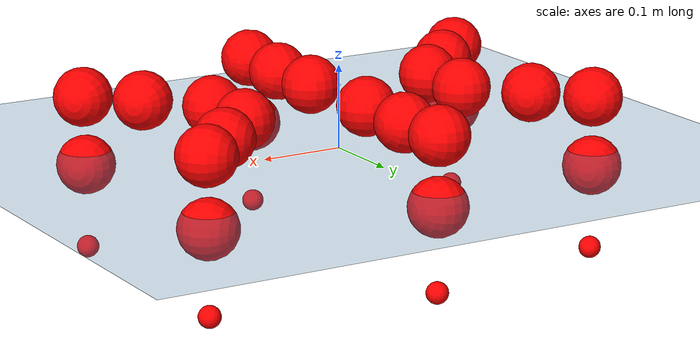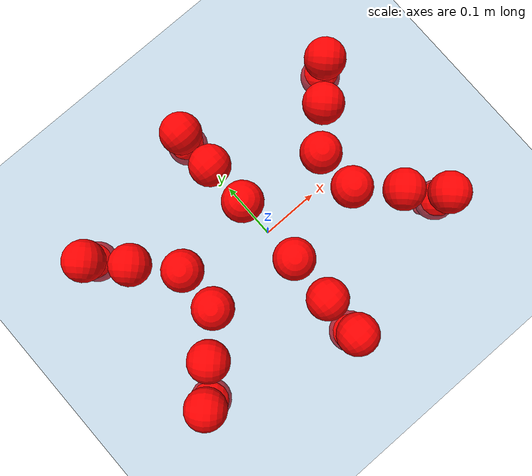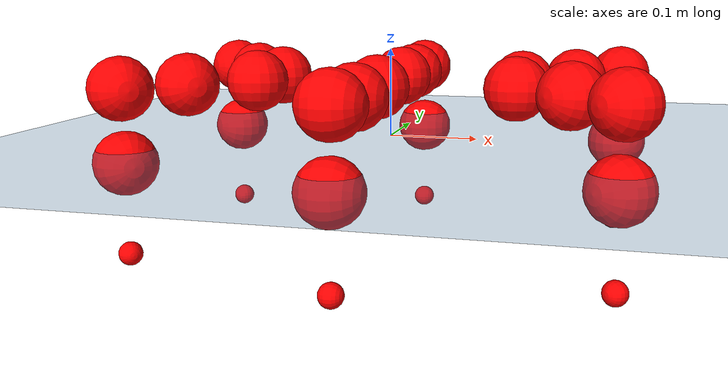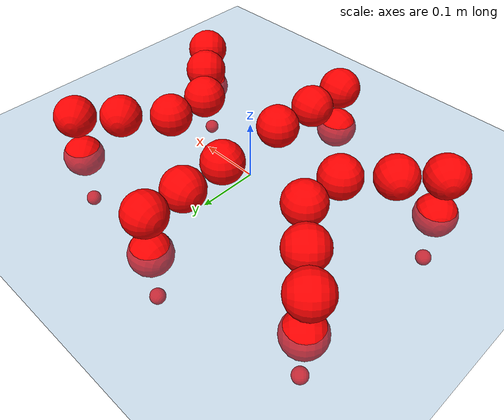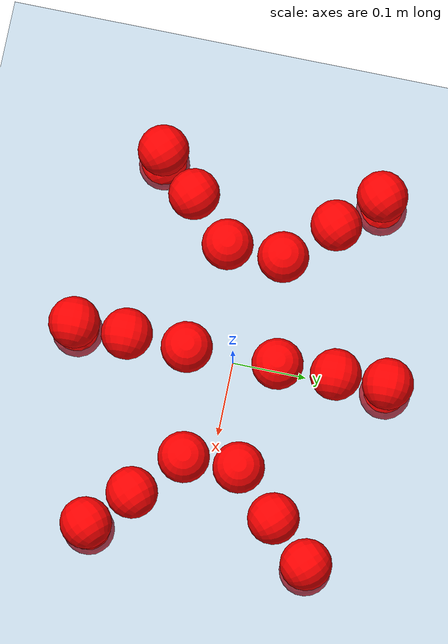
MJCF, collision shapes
<mujoco model="Golem">
  <compiler angle="radian" assetdir="assets" balanceinertia="true" inertiafromgeom="false"/>

  <option timestep="0.005" density="1.2" viscosity="2e-05"/>

  <size nkey="1"/>

  <visual>
    <quality shadowsize="8192"/>
    <map shadowclip="0.5"/>
  </visual>

  <default>
    <default class="/">
      <joint armature="0.01" damping="0.01" frictionloss="0.01"/>
      <geom contype="0" conaffinity="0" group="1" solref="-1000 -80"/>
      <site size="0.01 0.005 0.005" group="5"/>
      <general forcelimited="true" biastype="affine" gainprm="25" biasprm="0 -25 -0.5"/>
      <default class="visual">
        <geom type="mesh" group="2"/>
      </default>
      <default class="collision">
        <geom group="3"/>
      </default>
      <default class="foot">
        <geom size="0.01 0 0" condim="6" group="4" priority="1" solimp="0.015 1 0.01"/>
      </default>
      <default class="reward_collision_sphere">
        <geom group="5" rgba="1 0 0 1"/>
      </default>
    </default>
  </default>

  <asset>
    <texture type="skybox" colorspace="auto" name="//unnamed_texture_0" builtin="gradient" rgb1="0.95 0.95 0.95" rgb2="0.95 0.95 0.95" width="100" height="600"/>
    <texture type="2d" colorspace="auto" name="texplane" builtin="checker" rgb1="0.345 0.575 0.748" rgb2="0.345 0.575 0.748" markrgb="1 1 1" width="512" height="512"/>
    <material name="MatPlane" class="/" texture="texplane" texuniform="true" texrepeat="2 2" specular="0.9"/>
    <mesh name="body" class="/" file="body.stl" scale="0.001 0.001 0.001"/>
    <mesh name="coxa" class="/" file="coxa.stl" scale="0.001 0.001 0.001"/>
    <mesh name="femur" class="/" file="femur.stl" scale="0.001 0.001 0.001"/>
    <mesh name="tibia" class="/" file="tibia.stl" scale="0.001 0.001 0.001"/>
    <mesh name="tarsus" class="/" file="tarsus.stl" scale="0.001 0.001 0.001"/>
  </asset>

  <worldbody>
    <geom name="floor" class="/" size="100 100 0.125" type="plane" group="0" material="MatPlane"/>
    <light name="toplight_shadow" class="/" pos="0 0 5" dir="0.0990148 0.0990148 -0.990148" type="directional" ambient="0.04 0.04 0.04" diffuse="0.55 0.55 0.55" specular="0.12 0.12 0.12"/>
    <light name="toplight_fill" class="/" pos="0 0 5" dir="0.0990148 0.0990148 -0.990148" type="directional" castshadow="false" ambient="0.04 0.04 0.04" diffuse="0.3 0.3 0.3" specular="0.08 0.08 0.08"/>
    <body name="trunk" pos="0.00017472 -3.25771e-05 -0.00137493" quat="1 -0.000228 -2.13752e-05 0.000398488">
      <inertial pos="1.44431e-05 3.551e-05 -0.00452211" quat="0.999988 0.00349474 0.00346104 -0.000492799" mass="2.49902" diaginertia="0.00712097 0.00146464 0.0103372"/>
      <joint name="//unnamed_joint_0" type="free"/>
      <geom name="//unnamed_geom_1" class="/" pos="0 0 0.0643524" quat="1 0 0 0" type="mesh" rgba="0.9 0.9 0.9 1" mesh="body"/>
      <site name="imu" class="/" pos="0.125977 -0.000433129 0.104588" size="0.00871949"/>
      <camera name="track" class="/" pos="0 -1.35639 0" quat="0.707107 0.707107 0 0" mode="trackcom"/>
      <camera name="ego_camera" class="/" pos="0.121179 0 0.100551" quat="-0.5 -0.5 0.5 0.5"/>
      <body name="coxa_RR" pos="-0.16687 -0.0573695 0.0652723" quat="0.383454 -0.000352791 -0.000417465 -0.92356">
        <inertial pos="-0.00177469 0.000453884 0.00111846" quat="0.99999 0.00220306 -0.000986935 -0.0036912" mass="0.131364" diaginertia="0.00706879 0.00144876 0.010078"/>
        <joint name="coxa_joint_RR" class="/" pos="0 0 0" axis="2.79469e-06 9.37781e-05 -1" range="-3.12031 3.14177" armature="0.00901868" damping="0.00911671" frictionloss="0.0091122"/>
        <geom name="//unnamed_geom_2" class="/" type="mesh" rgba="0.2 0.2 0.2 1" mesh="coxa"/>
        <geom name="//unnamed_geom_3" class="reward_collision_sphere" size="0.0348779" pos="-0.0279644 0 0"/>
        <body name="femur_RR" pos="0.0543385 -0.000596259 -5.61509e-06" quat="0.499907 -0.499927 0.500069 0.500097">
          <inertial pos="-0.000518966 0.000782599 0.00126784" quat="1 1.40438e-06 -0.000183725 3.45235e-05" mass="0.132754" diaginertia="0.00706254 0.00143755 0.0100848"/>
          <joint name="femur_joint_RR" class="/" pos="0 0 0" axis="0.00231418 0.0021499 -0.999995" stiffness="0.000683751" range="-3.15335 3.13955" armature="0.00909476" damping="0.0048008" frictionloss="0.00906683"/>
          <geom name="//unnamed_geom_4" class="/" type="mesh" rgba="0.9 0.9 0.9 1" mesh="femur"/>
          <geom name="//unnamed_geom_5" class="reward_collision_sphere" size="0.0348779"/>
          <body name="tibia_RR" pos="0.000162886 -0.0730929 0.00119996" quat="-5.63362e-06 1 6.65998e-06 2.76519e-06">
            <inertial pos="0.000917691 0.00122828 -0.0013608" quat="0.999988 -0.00419702 -0.00123857 0.00212585" mass="0.133269" diaginertia="0.00704535 0.00144489 0.0103974"/>
            <joint name="tibia_joint_RR" class="/" pos="0 0 0" axis="-0.000359745 0.000171455 1" range="-3.13844 3.13804" armature="0.00882453" damping="0" frictionloss="0.00893449"/>
            <geom name="//unnamed_geom_6" class="/" type="mesh" rgba="0.2 0.2 0.2 1" mesh="tibia"/>
            <geom name="//unnamed_geom_7" class="reward_collision_sphere" size="0.0348779"/>
            <body name="tarsus_RR" pos="0.0798495 -0.00144346 -0.0009892" quat="1 0.000115557 0.000621679 6.05294e-05">
              <inertial pos="0.0542827 -0.00120485 -0.000895199" quat="0.499802 0.500078 0.499977 0.500142" mass="0.12939" diaginertia="0.0070565 0.00143433 0.0101721"/>
              <joint name="tarsus_joint_RR" class="/" pos="0 0 0" axis="0.000432149 0.000637122 1" range="-3.14199 3.12819" armature="0.00877072" damping="0.000327026" frictionloss="0.00859142"/>
              <geom name="//unnamed_geom_8" class="/" type="mesh" rgba="0.9 0.9 0.9 1" mesh="tarsus"/>
              <geom name="foot_1" class="foot" size="0.00850124" pos="0.1044 0 0" quat="0 -0.707107 0 0.707107"/>
              <geom name="//unnamed_geom_10" class="reward_collision_sphere" size="0.0348779"/>
              <geom name="//unnamed_geom_11" class="reward_collision_sphere" size="0.0130792" pos="0.100206 0 0"/>
              <site name="foot_1" class="foot" pos="0.1044 0 0" quat="0 -0.707107 0 0.707107" size="0.00871949"/>
            </body>
          </body>
        </body>
      </body>
      <body name="coxa_RM" pos="0.000810863 -0.0909128 0.064932" quat="0.706904 -0.000338216 7.80895e-05 -0.70731">
        <inertial pos="0.000145798 0.000535249 -0.00160537" quat="0.999994 0.00247537 0.000433518 -0.0025066" mass="0.132426" diaginertia="0.0069974 0.00141337 0.0101288"/>
        <joint name="coxa_joint_RM" class="/" pos="0 0 0" axis="0.00100725 -0.000614362 -0.999999" range="-3.14206 3.13142" armature="0.00904926" damping="0.0116062" frictionloss="0.00854115"/>
        <geom name="//unnamed_geom_12" class="/" type="mesh" rgba="0.2 0.2 0.2 1" mesh="coxa"/>
        <geom name="//unnamed_geom_13" class="reward_collision_sphere" size="0.0348779" pos="-0.0279644 0 0"/>
        <body name="femur_RM" pos="0.0542069 -0.00188795 -0.00129061" quat="0.499368 -0.499729 0.500502 0.500401">
          <inertial pos="0.00013095 0.000142167 -0.000231717" quat="0.999971 0.00141051 -0.00329044 -0.00675634" mass="0.13167" diaginertia="0.00714322 0.00145419 0.0102882"/>
          <joint name="femur_joint_RM" class="/" pos="0 0 0" axis="0.00291666 0.00352449 -0.99999" range="-3.1541 3.1541" armature="0.00945651" damping="0.0162819" frictionloss="0.00871972"/>
          <geom name="//unnamed_geom_14" class="/" type="mesh" rgba="0.9 0.9 0.9 1" mesh="femur"/>
          <geom name="//unnamed_geom_15" class="reward_collision_sphere" size="0.0348779"/>
          <body name="tibia_RM" pos="-0.00176642 -0.0719104 -0.000724026" quat="3.35875e-05 1 1.65451e-05 4.08421e-06">
            <inertial pos="0.000948292 0.00010416 -0.00106259" quat="0.999996 -0.00278744 7.7567e-05 0.00106241" mass="0.129373" diaginertia="0.00688782 0.00142258 0.0103345"/>
            <joint name="tibia_joint_RM" class="/" pos="0 0 0" axis="0.00115737 -0.000634645 0.999999" range="-3.15167 3.12364" armature="0.00844741" damping="0.000873239" frictionloss="0.00911157"/>
            <geom name="//unnamed_geom_16" class="/" type="mesh" rgba="0.2 0.2 0.2 1" mesh="tibia"/>
            <geom name="//unnamed_geom_17" class="reward_collision_sphere" size="0.0348779"/>
            <body name="tarsus_RM" pos="0.0822744 -0.000723179 0.00236185" quat="1 -0.000191307 -0.000229125 0.000350785">
              <inertial pos="0.0569747 5.15304e-05 0.00127241" quat="0.500589 0.500177 0.499542 0.499691" mass="0.13248" diaginertia="0.00704285 0.0014357 0.010298"/>
              <joint name="tarsus_joint_RM" class="/" pos="0 0 0" axis="0.00086667 0.000102544 1" range="-3.13102 3.17942" armature="0.00870184" damping="0" frictionloss="0.00868253"/>
              <geom name="//unnamed_geom_18" class="/" type="mesh" rgba="0.9 0.9 0.9 1" mesh="tarsus"/>
              <geom name="foot_2" class="foot" size="0.00839063" pos="0.1044 0 0" quat="0 -0.707107 0 0.707107"/>
              <geom name="//unnamed_geom_20" class="reward_collision_sphere" size="0.0348779"/>
              <geom name="//unnamed_geom_21" class="reward_collision_sphere" size="0.0130792" pos="0.100206 0 0"/>
              <site name="foot_2" class="foot" pos="0.1044 0 0" quat="0 -0.707107 0 0.707107" size="0.00871949"/>
            </body>
          </body>
        </body>
      </body>
      <body name="coxa_RF" pos="0.166438 -0.0567756 0.0639074" quat="0.923654 0.000221603 -0.000342805 -0.383226">
        <inertial pos="0.00139955 -0.00103936 0.000200948" quat="0.999999 0.00115041 -8.75743e-05 0.000348825" mass="0.13231" diaginertia="0.0071356 0.00142974 0.0103352"/>
        <joint name="coxa_joint_RF" class="/" pos="0 0 0" axis="0.000486363 0.00117177 -0.999999" range="-3.13884 3.13312" armature="0.00875714" damping="0" frictionloss="0.0091486"/>
        <geom name="//unnamed_geom_22" class="/" type="mesh" rgba="0.2 0.2 0.2 1" mesh="coxa"/>
        <geom name="//unnamed_geom_23" class="reward_collision_sphere" size="0.0348779" pos="-0.0279644 0 0"/>
        <body name="femur_RF" pos="0.0554905 0.00192925 0.00120237" quat="0.499985 -0.500193 0.500673 0.499149">
          <inertial pos="0.000627159 -0.000700817 0.00109032" quat="0.999995 0.00169786 -0.00160652 0.00218231" mass="0.134032" diaginertia="0.00712756 0.00146076 0.010358"/>
          <joint name="femur_joint_RF" class="/" pos="0 0 0" axis="0.00361471 0.000551445 -0.999993" range="-3.15683 3.12407" armature="0.00851892" damping="0.0108443" frictionloss="0.0087843"/>
          <geom name="//unnamed_geom_24" class="/" type="mesh" rgba="0.9 0.9 0.9 1" mesh="femur"/>
          <geom name="//unnamed_geom_25" class="reward_collision_sphere" size="0.0348779"/>
          <body name="tibia_RF" pos="0.000187533 -0.0729022 0.000520387" quat="-5.55926e-05 1 -4.13365e-06 2.80883e-05">
            <inertial pos="-0.000617201 -0.000338482 -4.82138e-05" quat="0.999988 0.00472104 -0.00145072 0.000124919" mass="0.127804" diaginertia="0.00684873 0.001401 0.0101946"/>
            <joint name="tibia_joint_RF" class="/" pos="0 0 0" axis="9.68904e-06 -0.000656719 1" range="-3.13251 3.12335" armature="0.00868789" damping="0" frictionloss="0.00871771"/>
            <geom name="//unnamed_geom_26" class="/" type="mesh" rgba="0.2 0.2 0.2 1" mesh="tibia"/>
            <geom name="//unnamed_geom_27" class="reward_collision_sphere" size="0.0348779"/>
            <body name="tarsus_RF" pos="0.0815716 -0.00165023 0.000570904" quat="1 8.37881e-05 -2.45052e-06 9.59341e-06">
              <inertial pos="0.0557163 0.000331281 -0.000365153" quat="0.500251 0.500027 0.499761 0.499961" mass="0.132871" diaginertia="0.0069716 0.00146034 0.0103003"/>
              <joint name="tarsus_joint_RF" class="/" pos="0 0 0" axis="-0.000680634 0.000407582 1" range="-3.13326 3.14139" armature="0.0086986" damping="0" frictionloss="0.00852659"/>
              <geom name="//unnamed_geom_28" class="/" type="mesh" rgba="0.9 0.9 0.9 1" mesh="tarsus"/>
              <geom name="foot_3" class="foot" size="0.0087789" pos="0.1044 0 0" quat="0 -0.707107 0 0.707107"/>
              <geom name="//unnamed_geom_30" class="reward_collision_sphere" size="0.0348779"/>
              <geom name="//unnamed_geom_31" class="reward_collision_sphere" size="0.0130792" pos="0.100206 0 0"/>
              <site name="foot_3" class="foot" pos="0.1044 0 0" quat="0 -0.707107 0 0.707107" size="0.00871949"/>
            </body>
          </body>
        </body>
      </body>
      <body name="coxa_LR" pos="-0.164938 0.0588496 0.0642949" quat="0.382631 -0.000257262 3.52873e-05 0.923901">
        <inertial pos="-0.00010854 0.000771729 0.000142027" quat="1 1.70299e-05 4.72852e-06 4.57225e-05" mass="0.131265" diaginertia="0.00688862 0.00141145 0.00999228"/>
        <joint name="coxa_joint_LR" class="/" pos="0 0 0" axis="0.000274291 -0.00228378 -0.999997" range="-3.13799 3.13176" armature="0.00834776" damping="0.0102522" frictionloss="0.00886403"/>
        <geom name="//unnamed_geom_32" class="/" type="mesh" rgba="0.2 0.2 0.2 1" mesh="coxa"/>
        <geom name="//unnamed_geom_33" class="reward_collision_sphere" size="0.0348779" pos="-0.0279644 0 0"/>
        <body name="femur_LR" pos="0.0556988 -0.00319841 5.5583e-06" quat="0.500004 -0.500001 0.500012 0.499983">
          <inertial pos="-0.000621072 0.000787477 -0.00189727" quat="0.999992 0.000482148 -0.00309107 -0.00267795" mass="0.129323" diaginertia="0.00693059 0.00141212 0.0101661"/>
          <joint name="femur_joint_LR" class="/" pos="0 0 0" axis="0.0057083 0.00680912 0.999961" range="-3.13541 3.14041" armature="0.00852671" damping="0.00492677" frictionloss="0.00851225"/>
          <geom name="//unnamed_geom_34" class="/" type="mesh" rgba="0.9 0.9 0.9 1" mesh="femur"/>
          <geom name="//unnamed_geom_35" class="reward_collision_sphere" size="0.0348779"/>
          <body name="tibia_LR" pos="0.000278006 -0.0736535 -0.00122307" quat="-0.000187236 1 5.57667e-05 -1.43594e-05">
            <inertial pos="-0.000798395 0.00117244 -0.00025232" quat="0.999999 -0.000435098 4.42794e-05 0.00108949" mass="0.131521" diaginertia="0.00686986 0.00142784 0.0103019"/>
            <joint name="tibia_joint_LR" class="/" pos="0 0 0" axis="-0.00690685 0.00558294 -0.999961" range="-3.12815 3.0978" armature="0.00959632" damping="0" frictionloss="0.00864643"/>
            <geom name="//unnamed_geom_36" class="/" type="mesh" rgba="0.2 0.2 0.2 1" mesh="tibia"/>
            <geom name="//unnamed_geom_37" class="reward_collision_sphere" size="0.0348779"/>
            <body name="tarsus_LR" pos="0.0820827 0.000921895 0.00218528" quat="1 1.6784e-05 8.57523e-05 0.000239553">
              <inertial pos="0.0580317 -9.4501e-05 -0.00194774" quat="0.500288 0.499968 0.499723 0.50002" mass="0.133623" diaginertia="0.00704536 0.00143802 0.0103522"/>
              <joint name="tarsus_joint_LR" class="/" pos="0 0 0" axis="0.000796577 -0.00120487 -0.999999" stiffness="0.000209887" range="-3.14957 3.15336" armature="0.00866592" damping="0.00278783" frictionloss="0.00874998"/>
              <geom name="//unnamed_geom_38" class="/" type="mesh" rgba="0.9 0.9 0.9 1" mesh="tarsus"/>
              <geom name="foot_4" class="foot" size="0.00854848" pos="0.1044 0 0" quat="0.707107 0 -0.707107 0"/>
              <geom name="//unnamed_geom_40" class="reward_collision_sphere" size="0.0348779"/>
              <geom name="//unnamed_geom_41" class="reward_collision_sphere" size="0.0130792" pos="0.100206 0 0"/>
              <site name="foot_4" class="foot" pos="0.1044 0 0" quat="0.707107 0 -0.707107 0" size="0.00871949"/>
            </body>
          </body>
        </body>
      </body>
      <body name="coxa_LM" pos="-0.00105735 0.0882639 0.0649087" quat="0.707165 -3.61135e-06 6.04096e-05 0.707049">
        <inertial pos="0.000267802 -0.00127671 0.00227576" quat="0.99999 0.00291645 0.00288626 0.00193537" mass="0.132009" diaginertia="0.00713558 0.00143791 0.010304"/>
        <joint name="coxa_joint_LM" class="/" pos="0 0 0" axis="-0.00100985 0.00340532 -0.999994" range="-3.14297 3.1566" armature="0.00798207" damping="0.00726938" frictionloss="0.00876253"/>
        <geom name="//unnamed_geom_42" class="/" type="mesh" rgba="0.2 0.2 0.2 1" mesh="coxa"/>
        <geom name="//unnamed_geom_43" class="reward_collision_sphere" size="0.0348779" pos="-0.0279644 0 0"/>
        <body name="femur_LM" pos="0.0510223 0.00186155 -0.00146444" quat="0.499981 -0.500048 0.499988 0.499983">
          <inertial pos="-0.0018117 -0.000718953 0.000296133" quat="0.999999 -5.74877e-05 -0.000529196 -0.000923195" mass="0.128645" diaginertia="0.00698091 0.00139718 0.0100478"/>
          <joint name="femur_joint_LM" class="/" pos="0 0 0" axis="-0.00537818 0.00640737 0.999965" range="-3.14256 3.14206" armature="0.00863823" damping="0.00765528" frictionloss="0.00890613"/>
          <geom name="//unnamed_geom_44" class="/" type="mesh" rgba="0.9 0.9 0.9 1" mesh="femur"/>
          <geom name="//unnamed_geom_45" class="reward_collision_sphere" size="0.0348779"/>
          <body name="tibia_LM" pos="-0.000875591 -0.0705972 0.00132465" quat="0.000250672 1 -0.000230479 -2.51431e-05">
            <inertial pos="-0.000304696 -0.000396932 0.000179668" quat="0.999998 0.000423419 -0.000721523 -0.00201263" mass="0.129001" diaginertia="0.00697289 0.0014232 0.01011"/>
            <joint name="tibia_joint_LM" class="/" pos="0 0 0" axis="-0.00142566 0.000650918 -0.999999" range="-3.12905 3.16045" armature="0.00863489" damping="0.0068072" frictionloss="0.00829446"/>
            <geom name="//unnamed_geom_46" class="/" type="mesh" rgba="0.2 0.2 0.2 1" mesh="tibia"/>
            <geom name="//unnamed_geom_47" class="reward_collision_sphere" size="0.0348779"/>
            <body name="tarsus_LM" pos="0.082245 -0.000703668 0.000411316" quat="1 7.71043e-05 -8.68754e-06 8.9271e-06">
              <inertial pos="0.0575293 9.56361e-05 0.000793252" quat="0.499901 0.500015 0.500075 0.500009" mass="0.132047" diaginertia="0.00711099 0.00144773 0.0102554"/>
              <joint name="tarsus_joint_LM" class="/" pos="0 0 0" axis="-0.00238824 0.00206715 -0.999995" range="-3.14326 3.14174" armature="0.00856437" damping="0" frictionloss="0.00896137"/>
              <geom name="//unnamed_geom_48" class="/" type="mesh" rgba="0.9 0.9 0.9 1" mesh="tarsus"/>
              <geom name="foot_5" class="foot" size="0.00877033" pos="0.1044 0 0" quat="0.707107 0 -0.707107 0"/>
              <geom name="//unnamed_geom_50" class="reward_collision_sphere" size="0.0348779"/>
              <geom name="//unnamed_geom_51" class="reward_collision_sphere" size="0.0130792" pos="0.100206 0 0"/>
              <site name="foot_5" class="foot" pos="0.1044 0 0" quat="0.707107 0 -0.707107 0" size="0.00871949"/>
            </body>
          </body>
        </body>
      </body>
      <body name="coxa_LF" pos="0.16556 0.057246 0.0642379" quat="0.923919 -0.000105648 1.4186e-05 0.382588">
        <inertial pos="0.000561851 -0.000256779 -0.00076443" quat="0.999975 -0.00217022 0.00196516 -0.00645762" mass="0.13267" diaginertia="0.00722301 0.0014299 0.0102785"/>
        <joint name="coxa_joint_LF" class="/" pos="0 0 0" axis="0.00175092 -0.00282073 -0.999994" range="-3.13057 3.11698" armature="0.00903809" damping="0.00740584" frictionloss="0.00854563"/>
        <geom name="//unnamed_geom_52" class="/" type="mesh" rgba="0.2 0.2 0.2 1" mesh="coxa"/>
        <geom name="//unnamed_geom_53" class="reward_collision_sphere" size="0.0348779" pos="-0.0279644 0 0"/>
        <body name="femur_LF" pos="0.0541921 0.000836299 -0.000903291" quat="0.500113 -0.499745 0.500176 0.499966">
          <inertial pos="-0.000754996 -0.000201412 0.000372576" quat="0.999988 0.000919177 -0.00477957 0.000879023" mass="0.133766" diaginertia="0.00697216 0.00143999 0.0102847"/>
          <joint name="femur_joint_LF" class="/" pos="0 0 0" axis="-0.000581048 -0.00812197 0.999967" stiffness="0.000208064" range="-3.16294 3.14392" armature="0.00869203" damping="0" frictionloss="0.00871121"/>
          <geom name="//unnamed_geom_54" class="/" type="mesh" rgba="0.9 0.9 0.9 1" mesh="femur"/>
          <geom name="//unnamed_geom_55" class="reward_collision_sphere" size="0.0348779"/>
          <body name="tibia_LF" pos="-0.000473467 -0.0747205 0.00206962" quat="1.33616e-05 1 2.19871e-05 3.16607e-05">
            <inertial pos="-0.000689966 -0.00017561 -0.000417829" quat="0.999949 -0.00930434 -0.00289774 -0.00280797" mass="0.135165" diaginertia="0.00705102 0.00144297 0.0103818"/>
            <joint name="tibia_joint_LF" class="/" pos="0 0 0" axis="-0.00368295 0.000270367 -0.999993" range="-3.13773 3.11951" armature="0.00866278" damping="0.00139205" frictionloss="0.00860861"/>
            <geom name="//unnamed_geom_56" class="/" type="mesh" rgba="0.2 0.2 0.2 1" mesh="tibia"/>
            <geom name="//unnamed_geom_57" class="reward_collision_sphere" size="0.0348779"/>
            <body name="tarsus_LF" pos="0.0823534 -0.000841161 -0.000789363" quat="1 -0.0001957 8.67484e-05 4.51923e-05">
              <inertial pos="0.0567287 0.00137592 -0.00048775" quat="0.500401 0.500264 0.500786 0.498546" mass="0.128312" diaginertia="0.00692162 0.00140706 0.0100384"/>
              <joint name="tarsus_joint_LF" class="/" pos="0 0 0" axis="-0.000899525 -0.0036164 -0.999993" range="-3.12931 3.1217" armature="0.00906823" damping="0.0132615" frictionloss="0.00863121"/>
              <geom name="//unnamed_geom_58" class="/" type="mesh" rgba="0.9 0.9 0.9 1" mesh="tarsus"/>
              <geom name="foot_6" class="foot" size="0.00866157" pos="0.1044 0 0" quat="0.707107 0 -0.707107 0"/>
              <geom name="//unnamed_geom_60" class="reward_collision_sphere" size="0.0348779"/>
              <geom name="//unnamed_geom_61" class="reward_collision_sphere" size="0.0130792" pos="0.100206 0 0"/>
              <site name="foot_6" class="foot" pos="0.1044 0 0" quat="0.707107 0 -0.707107 0" size="0.00871949"/>
            </body>
          </body>
        </body>
      </body>
    </body>
  </worldbody>

  <contact>
    <pair class="/" geom1="floor" geom2="foot_1" name="//unnamed_contact_0"/>
    <pair class="/" geom1="floor" geom2="foot_2" name="//unnamed_contact_1"/>
    <pair class="/" geom1="floor" geom2="foot_3" name="//unnamed_contact_2"/>
    <pair class="/" geom1="floor" geom2="foot_4" name="//unnamed_contact_3"/>
    <pair class="/" geom1="floor" geom2="foot_5" name="//unnamed_contact_4"/>
    <pair class="/" geom1="floor" geom2="foot_6" name="//unnamed_contact_5"/>
  </contact>

  <actuator>
    <general name="coxa_joint_RR" class="/" joint="coxa_joint_RR" forcerange="-6.28742 6.28742" gainprm="21.1963" biasprm="0 -21.1963 -0.452834"/>
    <general name="femur_joint_RR" class="/" joint="femur_joint_RR" forcerange="-6.26919 6.26919" gainprm="21.1963" biasprm="0 -21.1963 -0.452834"/>
    <general name="tibia_joint_RR" class="/" joint="tibia_joint_RR" forcerange="-6.14562 6.14562" gainprm="21.1963" biasprm="0 -21.1963 -0.452834"/>
    <general name="tarsus_joint_RR" class="/" joint="tarsus_joint_RR" forcerange="-6.13067 6.13067" gainprm="21.1963" biasprm="0 -21.1963 -0.452834"/>
    <general name="coxa_joint_RM" class="/" joint="coxa_joint_RM" forcerange="-6.85551 6.85551" gainprm="21.1963" biasprm="0 -21.1963 -0.452834"/>
    <general name="femur_joint_RM" class="/" joint="femur_joint_RM" forcerange="-6.32727 6.32727" gainprm="21.1963" biasprm="0 -21.1963 -0.452834"/>
    <general name="tibia_joint_RM" class="/" joint="tibia_joint_RM" forcerange="-6.12936 6.12936" gainprm="21.1963" biasprm="0 -21.1963 -0.452834"/>
    <general name="tarsus_joint_RM" class="/" joint="tarsus_joint_RM" forcerange="-6.13908 6.13908" gainprm="21.1963" biasprm="0 -21.1963 -0.452834"/>
    <general name="coxa_joint_RF" class="/" joint="coxa_joint_RF" forcerange="-6.5121 6.5121" gainprm="21.1963" biasprm="0 -21.1963 -0.452834"/>
    <general name="femur_joint_RF" class="/" joint="femur_joint_RF" forcerange="-6.34806 6.34806" gainprm="21.1963" biasprm="0 -21.1963 -0.452834"/>
    <general name="tibia_joint_RF" class="/" joint="tibia_joint_RF" forcerange="-6.44331 6.44331" gainprm="21.1963" biasprm="0 -21.1963 -0.452834"/>
    <general name="tarsus_joint_RF" class="/" joint="tarsus_joint_RF" forcerange="-6.36139 6.36139" gainprm="21.1963" biasprm="0 -21.1963 -0.452834"/>
    <general name="coxa_joint_LR" class="/" joint="coxa_joint_LR" forcerange="-6.69187 6.69187" gainprm="21.1963" biasprm="0 -21.1963 -0.452834"/>
    <general name="femur_joint_LR" class="/" joint="femur_joint_LR" forcerange="-6.34951 6.34951" gainprm="21.1963" biasprm="0 -21.1963 -0.452834"/>
    <general name="tibia_joint_LR" class="/" joint="tibia_joint_LR" forcerange="-6.40295 6.40295" gainprm="21.1963" biasprm="0 -21.1963 -0.452834"/>
    <general name="tarsus_joint_LR" class="/" joint="tarsus_joint_LR" forcerange="-6.747 6.747" gainprm="21.1963" biasprm="0 -21.1963 -0.452834"/>
    <general name="coxa_joint_LM" class="/" joint="coxa_joint_LM" forcerange="-6.17033 6.17033" gainprm="21.1963" biasprm="0 -21.1963 -0.452834"/>
    <general name="femur_joint_LM" class="/" joint="femur_joint_LM" forcerange="-6.17888 6.17888" gainprm="21.1963" biasprm="0 -21.1963 -0.452834"/>
    <general name="tibia_joint_LM" class="/" joint="tibia_joint_LM" forcerange="-6.65262 6.65262" gainprm="21.1963" biasprm="0 -21.1963 -0.452834"/>
    <general name="tarsus_joint_LM" class="/" joint="tarsus_joint_LM" forcerange="-6.83571 6.83571" gainprm="21.1963" biasprm="0 -21.1963 -0.452834"/>
    <general name="coxa_joint_LF" class="/" joint="coxa_joint_LF" forcerange="-6.35291 6.35291" gainprm="21.1963" biasprm="0 -21.1963 -0.452834"/>
    <general name="femur_joint_LF" class="/" joint="femur_joint_LF" forcerange="-6.38352 6.38352" gainprm="21.1963" biasprm="0 -21.1963 -0.452834"/>
    <general name="tibia_joint_LF" class="/" joint="tibia_joint_LF" forcerange="-6.56512 6.56512" gainprm="21.1963" biasprm="0 -21.1963 -0.452834"/>
    <general name="tarsus_joint_LF" class="/" joint="tarsus_joint_LF" forcerange="-6.58687 6.58687" gainprm="21.1963" biasprm="0 -21.1963 -0.452834"/>
  </actuator>

  <sensor>
    <gyro site="imu" name="imu_angular_velocity"/>
    <velocimeter site="imu" name="imu_linear_velocity"/>
    <framelinvel objtype="site" objname="foot_1" name="foot_1_global_linear_velocity"/>
    <framelinvel objtype="site" objname="foot_2" name="foot_2_global_linear_velocity"/>
    <framelinvel objtype="site" objname="foot_3" name="foot_3_global_linear_velocity"/>
    <framelinvel objtype="site" objname="foot_4" name="foot_4_global_linear_velocity"/>
    <framelinvel objtype="site" objname="foot_5" name="foot_5_global_linear_velocity"/>
    <framelinvel objtype="site" objname="foot_6" name="foot_6_global_linear_velocity"/>
  </sensor>

  <keyframe>
    <key name="home" qpos="0 0 0.1457 1 0 0 0 0 0 0 0 0 0 0 0 0 0 0 0 0 0 0 0 0 0 0 0 0 0 0 0"/>
  </keyframe>
</mujoco>
